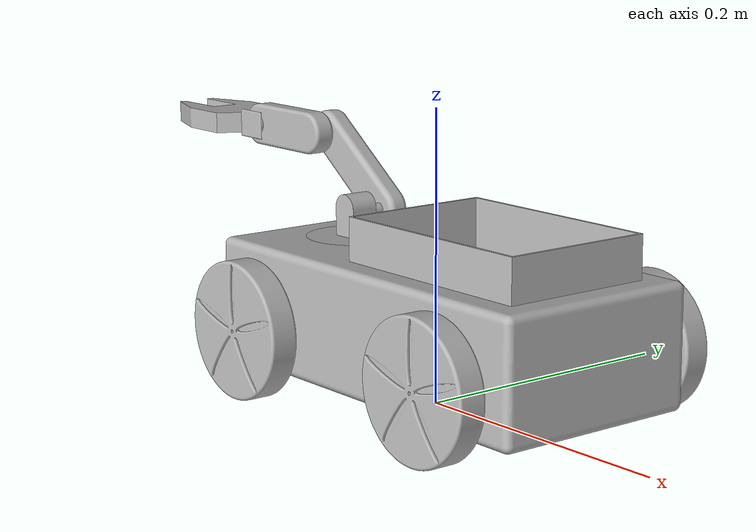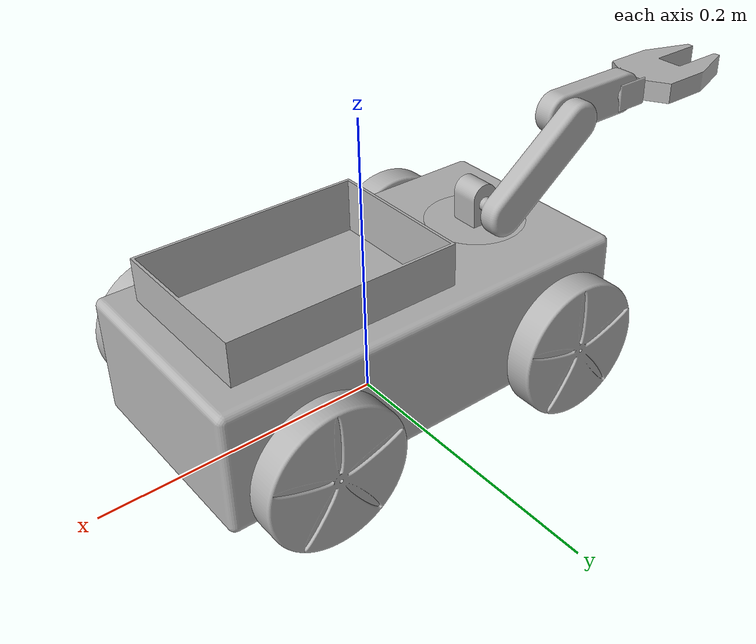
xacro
<?xml version="1.0" ?>
<robot name="hope" xmlns:xacro="http://www.ros.org/wiki/xacro">

<xacro:include filename="$(find hope_description)/urdf/materials.xacro" />
<xacro:include filename="$(find hope_description)/urdf/hope.trans" />
<xacro:include filename="$(find hope_description)/urdf/hope.gazebo" />
<link name="base_link">
  <inertial>
    <origin xyz="0.0012994966403905295 0.003443235869906314 0.05531645540346945" rpy="0 0 0"/>
    <mass value="28.068772046282348"/>
    <inertia ixx="0.069479" iyy="0.228422" izz="0.267087" ixy="0.0" iyz="-0.0" ixz="0.001603"/>
  </inertial>
  <visual>
    <origin xyz="0 0 0" rpy="0 0 0"/>
    <geometry>
      <mesh filename="file://$(find hope_description)/meshes/base_link.stl" scale="0.001 0.001 0.001"/>
    </geometry>
    <material name="silver"/>
  </visual>
  <collision>
    <origin xyz="0 0 0" rpy="0 0 0"/>
    <geometry>
      <mesh filename="file://$(find hope_description)/meshes/base_link.stl" scale="0.001 0.001 0.001"/>
    </geometry>
  </collision>
</link>

<link name="left_wheel_front_1">
  <inertial>
    <origin xyz="1.5265940261910416e-08 -0.019812713828790365 -3.7120307092713967e-07" rpy="0 0 0"/>
    <mass value="1.1006928877887447"/>
    <inertia ixx="0.000655" iyy="0.001237" izz="0.000655" ixy="-0.0" iyz="0.0" ixz="0.0"/>
  </inertial>
  <visual>
    <origin xyz="0.092597 0.071557 -0.047502" rpy="0 0 0"/>
    <geometry>
      <mesh filename="file://$(find hope_description)/meshes/left_wheel_front_1.stl" scale="0.001 0.001 0.001"/>
    </geometry>
    <material name="silver"/>
  </visual>
  <collision>
    <origin xyz="0.092597 0.071557 -0.047502" rpy="0 0 0"/>
    <geometry>
      <mesh filename="file://$(find hope_description)/meshes/left_wheel_front_1.stl" scale="0.001 0.001 0.001"/>
    </geometry>
  </collision>
</link>

<link name="left_wheel_back_1">
  <inertial>
    <origin xyz="1.1812489889018174e-08 -0.01981271382879035 6.229975563210033e-10" rpy="0 0 0"/>
    <mass value="1.1006928877887447"/>
    <inertia ixx="0.000655" iyy="0.001237" izz="0.000655" ixy="-0.0" iyz="0.0" ixz="0.0"/>
  </inertial>
  <visual>
    <origin xyz="-0.097737 0.071557 -0.0475" rpy="0 0 0"/>
    <geometry>
      <mesh filename="file://$(find hope_description)/meshes/left_wheel_back_1.stl" scale="0.001 0.001 0.001"/>
    </geometry>
    <material name="silver"/>
  </visual>
  <collision>
    <origin xyz="-0.097737 0.071557 -0.0475" rpy="0 0 0"/>
    <geometry>
      <mesh filename="file://$(find hope_description)/meshes/left_wheel_back_1.stl" scale="0.001 0.001 0.001"/>
    </geometry>
  </collision>
</link>

<link name="right_wheel_front_1">
  <inertial>
    <origin xyz="1.5463430758089203e-08 0.019813185568603023 -3.7120307059407276e-07" rpy="0 0 0"/>
    <mass value="1.1006928877887447"/>
    <inertia ixx="0.000655" iyy="0.001237" izz="0.000655" ixy="-0.0" iyz="-0.0" ixz="-0.0"/>
  </inertial>
  <visual>
    <origin xyz="0.092597 -0.078443 -0.047502" rpy="0 0 0"/>
    <geometry>
      <mesh filename="file://$(find hope_description)/meshes/right_wheel_front_1.stl" scale="0.001 0.001 0.001"/>
    </geometry>
    <material name="silver"/>
  </visual>
  <collision>
    <origin xyz="0.092597 -0.078443 -0.047502" rpy="0 0 0"/>
    <geometry>
      <mesh filename="file://$(find hope_description)/meshes/right_wheel_front_1.stl" scale="0.001 0.001 0.001"/>
    </geometry>
  </collision>
</link>

<link name="right_wheel_back_1">
  <inertial>
    <origin xyz="1.2009979871718812e-08 0.019813185568602912 6.229979032656985e-10" rpy="0 0 0"/>
    <mass value="1.1006928877887447"/>
    <inertia ixx="0.000655" iyy="0.001237" izz="0.000655" ixy="-0.0" iyz="-0.0" ixz="-0.0"/>
  </inertial>
  <visual>
    <origin xyz="-0.097737 -0.078443 -0.0475" rpy="0 0 0"/>
    <geometry>
      <mesh filename="file://$(find hope_description)/meshes/right_wheel_back_1.stl" scale="0.001 0.001 0.001"/>
    </geometry>
    <material name="silver"/>
  </visual>
  <collision>
    <origin xyz="-0.097737 -0.078443 -0.0475" rpy="0 0 0"/>
    <geometry>
      <mesh filename="file://$(find hope_description)/meshes/right_wheel_back_1.stl" scale="0.001 0.001 0.001"/>
    </geometry>
  </collision>
</link>

<link name="store_link_1">
  <inertial>
    <origin xyz="1.1911234859551811e-08 2.3586990621597692e-07 0.011691770679077854" rpy="0 0 0"/>
    <mass value="0.5937111999999989"/>
    <inertia ixx="0.001051" iyy="0.001884" izz="0.00274" ixy="0.0" iyz="-0.0" ixz="-0.0"/>
  </inertial>
  <visual>
    <origin xyz="-0.052737 -0.003443 -0.09" rpy="0 0 0"/>
    <geometry>
      <mesh filename="file://$(find hope_description)/meshes/store_link_1.stl" scale="0.001 0.001 0.001"/>
    </geometry>
    <material name="silver"/>
  </visual>
  <collision>
    <origin xyz="-0.052737 -0.003443 -0.09" rpy="0 0 0"/>
    <geometry>
      <mesh filename="file://$(find hope_description)/meshes/store_link_1.stl" scale="0.001 0.001 0.001"/>
    </geometry>
  </collision>
</link>

<link name="base_arm_link_1">
  <inertial>
    <origin xyz="1.7104321481803408e-06 -5.251717020668487e-06 0.009205002758533962" rpy="0 0 0"/>
    <mass value="0.38706566227732825"/>
    <inertia ixx="0.000128" iyy="0.000127" izz="0.00019" ixy="0.0" iyz="0.0" ixz="-0.0"/>
  </inertial>
  <visual>
    <origin xyz="0.092263 -0.003443 -0.09" rpy="0 0 0"/>
    <geometry>
      <mesh filename="file://$(find hope_description)/meshes/base_arm_link_1.stl" scale="0.001 0.001 0.001"/>
    </geometry>
    <material name="silver"/>
  </visual>
  <collision>
    <origin xyz="0.092263 -0.003443 -0.09" rpy="0 0 0"/>
    <geometry>
      <mesh filename="file://$(find hope_description)/meshes/base_arm_link_1.stl" scale="0.001 0.001 0.001"/>
    </geometry>
  </collision>
</link>

<link name="shoulder_link_1">
  <inertial>
    <origin xyz="-0.031477684070447154 0.017278205097870186 0.023608539169756554" rpy="0 0 0"/>
    <mass value="0.3589028614117094"/>
    <inertia ixx="0.000139" iyy="0.000349" izz="0.000224" ixy="2e-06" iyz="-2e-06" ixz="0.000145"/>
  </inertial>
  <visual>
    <origin xyz="0.092226 -0.013418 -0.115764" rpy="0 0 0"/>
    <geometry>
      <mesh filename="file://$(find hope_description)/meshes/shoulder_link_1.stl" scale="0.001 0.001 0.001"/>
    </geometry>
    <material name="silver"/>
  </visual>
  <collision>
    <origin xyz="0.092226 -0.013418 -0.115764" rpy="0 0 0"/>
    <geometry>
      <mesh filename="file://$(find hope_description)/meshes/shoulder_link_1.stl" scale="0.001 0.001 0.001"/>
    </geometry>
  </collision>
</link>

<link name="elbow_link_1">
  <inertial>
    <origin xyz="-0.027718787818495738 -0.007507195641945368 4.959545387706044e-07" rpy="0 0 0"/>
    <mass value="0.26962845556589415"/>
    <inertia ixx="2.4e-05" iyy="0.00017" izz="0.000155" ixy="0.0" iyz="-0.0" ixz="0.0"/>
  </inertial>
  <visual>
    <origin xyz="0.156226 -0.021418 -0.163764" rpy="0 0 0"/>
    <geometry>
      <mesh filename="file://$(find hope_description)/meshes/elbow_link_1.stl" scale="0.001 0.001 0.001"/>
    </geometry>
    <material name="silver"/>
  </visual>
  <collision>
    <origin xyz="0.156226 -0.021418 -0.163764" rpy="0 0 0"/>
    <geometry>
      <mesh filename="file://$(find hope_description)/meshes/elbow_link_1.stl" scale="0.001 0.001 0.001"/>
    </geometry>
  </collision>
</link>

<link name="wrist_link_1">
  <inertial>
    <origin xyz="-0.0004781950578354177 -1.2270162885238273e-06 4.959545412686062e-07" rpy="0 0 0"/>
    <mass value="0.038025234439684065"/>
    <inertia ixx="3e-06" iyy="2e-06" izz="3e-06" ixy="-0.0" iyz="-0.0" ixz="0.0"/>
  </inertial>
  <visual>
    <origin xyz="0.216226 -0.013918 -0.163764" rpy="0 0 0"/>
    <geometry>
      <mesh filename="file://$(find hope_description)/meshes/wrist_link_1.stl" scale="0.001 0.001 0.001"/>
    </geometry>
    <material name="silver"/>
  </visual>
  <collision>
    <origin xyz="0.216226 -0.013918 -0.163764" rpy="0 0 0"/>
    <geometry>
      <mesh filename="file://$(find hope_description)/meshes/wrist_link_1.stl" scale="0.001 0.001 0.001"/>
    </geometry>
  </collision>
</link>

<link name="gripper_link_1">
  <inertial>
    <origin xyz="-0.03242610110651717 -0.010999764130088779 4.959545413518729e-07" rpy="0 0 0"/>
    <mass value="0.35508762871337324"/>
    <inertia ixx="9.7e-05" iyy="0.000142" izz="0.000226" ixy="0.0" iyz="-0.0" ixz="0.0"/>
  </inertial>
  <visual>
    <origin xyz="0.23085 -0.024918 -0.163764" rpy="0 0 0"/>
    <geometry>
      <mesh filename="file://$(find hope_description)/meshes/gripper_link_1.stl" scale="0.001 0.001 0.001"/>
    </geometry>
    <material name="silver"/>
  </visual>
  <collision>
    <origin xyz="0.23085 -0.024918 -0.163764" rpy="0 0 0"/>
    <geometry>
      <mesh filename="file://$(find hope_description)/meshes/gripper_link_1.stl" scale="0.001 0.001 0.001"/>
    </geometry>
  </collision>
</link>

<joint name="joint_left_front" type="continuous">
  <origin xyz="-0.092597 -0.071557 0.047502" rpy="0 0 0"/>
  <parent link="base_link"/>
  <child link="left_wheel_front_1"/>
  <axis xyz="0.0 1.0 0.0"/>
</joint>

<joint name="joint_left_back" type="continuous">
  <origin xyz="0.097737 -0.071557 0.0475" rpy="0 0 0"/>
  <parent link="base_link"/>
  <child link="left_wheel_back_1"/>
  <axis xyz="0.0 1.0 0.0"/>
</joint>

<joint name="joint_right_front" type="continuous">
  <origin xyz="-0.092597 0.078443 0.047502" rpy="0 0 0"/>
  <parent link="base_link"/>
  <child link="right_wheel_front_1"/>
  <axis xyz="-0.0 -1.0 -0.0"/>
</joint>

<joint name="joint_right_back" type="continuous">
  <origin xyz="0.097737 0.078443 0.0475" rpy="0 0 0"/>
  <parent link="base_link"/>
  <child link="right_wheel_back_1"/>
  <axis xyz="-0.0 -1.0 -0.0"/>
</joint>

<joint name="joint_store" type="fixed">
  <origin xyz="0.052737 0.003443 0.09" rpy="0 0 0"/>
  <parent link="base_link"/>
  <child link="store_link_1"/>
</joint>

<joint name="joint_base_arm" type="continuous">
  <origin xyz="-0.092263 0.003443 0.09" rpy="0 0 0"/>
  <parent link="base_link"/>
  <child link="base_arm_link_1"/>
  <axis xyz="-0.0 -0.0 1.0"/>
</joint>

<joint name="joint_shoulder" type="continuous">
  <origin xyz="3.7e-05 0.009975 0.025764" rpy="0 0 0"/>
  <parent link="base_arm_link_1"/>
  <child link="shoulder_link_1"/>
  <axis xyz="0.0 1.0 0.0"/>
</joint>

<joint name="joint_elbow" type="continuous">
  <origin xyz="-0.064 0.008 0.048" rpy="0 0 0"/>
  <parent link="shoulder_link_1"/>
  <child link="elbow_link_1"/>
  <axis xyz="-0.0 -1.0 -0.0"/>
</joint>

<joint name="joint_wrist" type="continuous">
  <origin xyz="-0.06 -0.0075 0.0" rpy="0 0 0"/>
  <parent link="elbow_link_1"/>
  <child link="wrist_link_1"/>
  <axis xyz="0.0 1.0 0.0"/>
</joint>

<joint name="joint_gripper" type="continuous">
  <origin xyz="-0.014624 0.011 0.0" rpy="0 0 0"/>
  <parent link="wrist_link_1"/>
  <child link="gripper_link_1"/>
  <axis xyz="-0.0 -1.0 -0.0"/>
</joint>

</robot>

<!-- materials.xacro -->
<robot name="hope" xmlns:xacro="http://www.ros.org/wiki/xacro" >

<material name="silver">
  <color rgba="0.700 0.700 0.700 1.000"/>
</material>

</robot>

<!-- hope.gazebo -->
<robot name="hope" xmlns:xacro="http://www.ros.org/wiki/xacro" >

<xacro:property name="body_color" value="Gazebo/Silver" />

<gazebo>
  <plugin name="control" filename="libgazebo_ros_control.so"/>
</gazebo>
<gazebo reference="base_link">
  <material>${body_color}</material>
  <mu1>0.2</mu1>
  <mu2>0.2</mu2>
  <self_collide>true</self_collide>
  <gravity>true</gravity>
</gazebo>

<gazebo reference="left_wheel_front_1">
  <material>${body_color}</material>
  <mu1>0.2</mu1>
  <mu2>0.2</mu2>
  <self_collide>true</self_collide>
</gazebo>

<gazebo reference="left_wheel_back_1">
  <material>${body_color}</material>
  <mu1>0.2</mu1>
  <mu2>0.2</mu2>
  <self_collide>true</self_collide>
</gazebo>

<gazebo reference="right_wheel_front_1">
  <material>${body_color}</material>
  <mu1>0.2</mu1>
  <mu2>0.2</mu2>
  <self_collide>true</self_collide>
</gazebo>

<gazebo reference="right_wheel_back_1">
  <material>${body_color}</material>
  <mu1>0.2</mu1>
  <mu2>0.2</mu2>
  <self_collide>true</self_collide>
</gazebo>

<gazebo reference="store_link_1">
  <material>${body_color}</material>
  <mu1>0.2</mu1>
  <mu2>0.2</mu2>
  <self_collide>true</self_collide>
</gazebo>

<gazebo reference="base_arm_link_1">
  <material>${body_color}</material>
  <mu1>0.2</mu1>
  <mu2>0.2</mu2>
  <self_collide>true</self_collide>
</gazebo>

<gazebo reference="shoulder_link_1">
  <material>${body_color}</material>
  <mu1>0.2</mu1>
  <mu2>0.2</mu2>
  <self_collide>true</self_collide>
</gazebo>

<gazebo reference="elbow_link_1">
  <material>${body_color}</material>
  <mu1>0.2</mu1>
  <mu2>0.2</mu2>
  <self_collide>true</self_collide>
</gazebo>

<gazebo reference="wrist_link_1">
  <material>${body_color}</material>
  <mu1>0.2</mu1>
  <mu2>0.2</mu2>
  <self_collide>true</self_collide>
</gazebo>

<gazebo reference="gripper_link_1">
  <material>${body_color}</material>
  <mu1>0.2</mu1>
  <mu2>0.2</mu2>
  <self_collide>true</self_collide>
</gazebo>

</robot>
